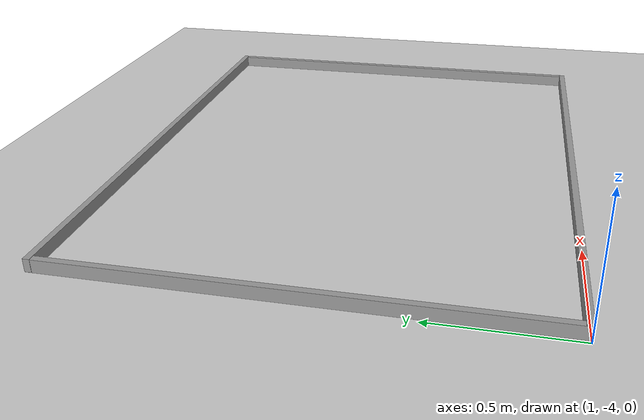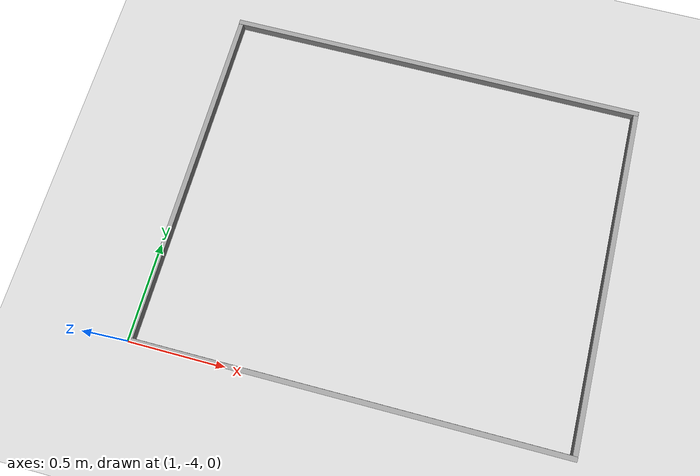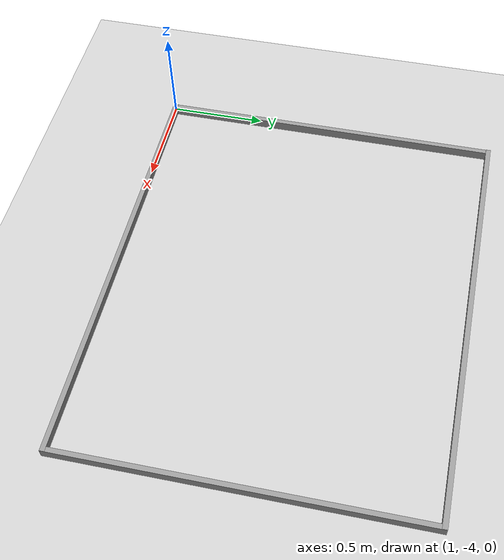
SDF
<sdf version="1.6">
 <world name="default">
  <light name="sun" type="directional">
   <pose>0 0 10 0 -0 0</pose>
   <diffuse>0.8 0.8 0.8 1</diffuse>
   <specular>0.1 0.1 0.1 1</specular>
   <attenuation>
    <range>1000</range>
    <constant>0.9</constant>
    <linear>0.01</linear>
    <quadratic>0.001</quadratic>
   </attenuation>
   <direction>-0.5 0.5 -1</direction>
  </light>
  <model name="ground_plane">
   <static>1</static>
   <link name="link">
    <collision name="collision">
     <geometry><plane><normal>0 0 1</normal><size>100 100</size></plane></geometry>
     <surface><friction><ode><mu>100</mu><mu2>50</mu2></ode></friction></surface>
    </collision>
    <visual name="visual">
     <cast_shadows>0</cast_shadows>
     <geometry><plane><normal>0 0 1</normal><size>100 100</size></plane></geometry>
     <material>
      <script><uri>file://media/materials/scripts/gazebo.material</uri><name>Gazebo/Grey</name></script>
     </material>
    </visual>
   </link>
  </model>
  <gravity>0 0 -9.8</gravity>
  <magnetic_field>6e-06 2.3e-05 -4.2e-05</magnetic_field>
  <atmosphere type="adiabatic"/>
  <physics name="default_physics" default="0" type="ode">
   <max_step_size>0.001</max_step_size>
   <real_time_factor>1</real_time_factor>
   <real_time_update_rate>1000</real_time_update_rate>
  </physics>
  <scene><ambient>0.4 0.4 0.4 1</ambient><background>0.7 0.7 0.7 1</background><shadows>1</shadows></scene>
  <spherical_coordinates>
   <surface_model>EARTH_WGS84</surface_model>
   <latitude_deg>0</latitude_deg>
   <longitude_deg>0</longitude_deg>
   <elevation>0</elevation>
   <heading_deg>0</heading_deg>
  </spherical_coordinates>
  <model name="Wall_1">
   <link name="link_3">
    <inertial>
     <mass>0.208784</mass>
     <inertia>
      <ixx>0.0347974</ixx>
      <ixy>0</ixy>
      <ixz>0</ixz>
      <iyy>0.0181571</iyy>
      <iyz>0</iyz>
      <izz>0.0181571</izz>
     </inertia>
    </inertial>
    <visual name="visual">
     <geometry><box><size>0.025 1.8 0.05</size></box></geometry>
     <material>
      <lighting>1</lighting>
      <script><uri>file://media/materials/scripts/gazebo.material</uri><name>Gazebo/Grey</name></script>
      <ambient>0.3 0.3 0.3 1</ambient>
      <diffuse>0.7 0.7 0.7 1</diffuse>
      <specular>0.01 0.01 0.01 1</specular>
      <emissive>0 0 0 1</emissive>
      <shader type="vertex"><normal_map>__default__</normal_map></shader>
     </material>
    </visual>
    <collision name="collision">
     <geometry><box><size>0.208783 1 1</size></box></geometry>
     <surface>
      <friction>
       <ode><mu>1</mu><mu2>1</mu2><fdir1>0 0 0</fdir1><slip1>0</slip1><slip2>0</slip2></ode>
       <torsional>
        <coefficient>1</coefficient>
        <patch_radius>0</patch_radius>
        <surface_radius>0</surface_radius>
        <use_patch_radius>1</use_patch_radius>
        <ode><slip>0</slip></ode>
       </torsional>
      </friction>
      <bounce><restitution_coefficient>0</restitution_coefficient><threshold>1e+06</threshold></bounce>
      <contact>
       <collide_without_contact>0</collide_without_contact>
       <collide_without_contact_bitmask>1</collide_without_contact_bitmask>
       <collide_bitmask>1</collide_bitmask>
       <ode>
        <soft_cfm>0</soft_cfm>
        <soft_erp>0.2</soft_erp>
        <kp>1e+13</kp>
        <kd>1</kd>
        <max_vel>0.01</max_vel>
        <min_depth>0</min_depth>
       </ode>
       <bullet>
        <split_impulse>1</split_impulse>
        <split_impulse_penetration_threshold>-0.01</split_impulse_penetration_threshold>
        <soft_cfm>0</soft_cfm>
        <soft_erp>0.2</soft_erp>
        <kp>1e+13</kp>
        <kd>1</kd>
       </bullet>
      </contact>
     </surface>
    </collision>
   </link>
   <static>0</static>
   <pose>1.02464 -3.10394 0.024146 0 -0 0</pose>
  </model>
  <model name="Wall_2">
   <link name="link_6">
    <inertial>
     <mass>0.540966</mass>
     <inertia>
      <ixx>0.0901612</ixx>
      <ixy>0</ixy>
      <ixz>0</ixz>
      <iyy>0.0582732</iyy>
      <iyz>0</iyz>
      <izz>0.0582732</izz>
     </inertia>
    </inertial>
    <visual name="visual">
     <geometry><box><size>2.2 0.025 0.05</size></box></geometry>
     <material>
      <lighting>1</lighting>
      <script><uri>file://media/materials/scripts/gazebo.material</uri><name>Gazebo/Grey</name></script>
      <ambient>0.3 0.3 0.3 1</ambient>
      <diffuse>0.7 0.7 0.7 1</diffuse>
      <specular>0.01 0.01 0.01 1</specular>
      <emissive>0 0 0 1</emissive>
      <shader type="vertex"><normal_map>__default__</normal_map></shader>
     </material>
    </visual>
    <collision name="collision">
     <geometry><box><size>0.540966 1 1</size></box></geometry>
     <surface>
      <friction>
       <ode><mu>1</mu><mu2>1</mu2><fdir1>0 0 0</fdir1><slip1>0</slip1><slip2>0</slip2></ode>
       <torsional>
        <coefficient>1</coefficient>
        <patch_radius>0</patch_radius>
        <surface_radius>0</surface_radius>
        <use_patch_radius>1</use_patch_radius>
        <ode><slip>0</slip></ode>
       </torsional>
      </friction>
      <bounce><restitution_coefficient>0</restitution_coefficient><threshold>1e+06</threshold></bounce>
      <contact>
       <collide_without_contact>0</collide_without_contact>
       <collide_without_contact_bitmask>1</collide_without_contact_bitmask>
       <collide_bitmask>1</collide_bitmask>
       <ode>
        <soft_cfm>0</soft_cfm>
        <soft_erp>0.2</soft_erp>
        <kp>1e+13</kp>
        <kd>1</kd>
        <max_vel>0.01</max_vel>
        <min_depth>0</min_depth>
       </ode>
       <bullet>
        <split_impulse>1</split_impulse>
        <split_impulse_penetration_threshold>-0.01</split_impulse_penetration_threshold>
        <soft_cfm>0</soft_cfm>
        <soft_erp>0.2</soft_erp>
        <kp>1e+13</kp>
        <kd>1</kd>
       </bullet>
      </contact>
     </surface>
    </collision>
   </link>
   <static>0</static>
   <pose>2.11264 -3.99198 0.025703 0 -0 0</pose>
  </model>
  <model name="Wall_3">
   <link name="link_3">
    <inertial>
     <mass>0.208784</mass>
     <inertia>
      <ixx>0.0347974</ixx>
      <ixy>0</ixy>
      <ixz>0</ixz>
      <iyy>0.0181571</iyy>
      <iyz>0</iyz>
      <izz>0.0181571</izz>
     </inertia>
    </inertial>
    <visual name="visual">
     <geometry><box><size>0.025 1.8 0.05</size></box></geometry>
     <material>
      <lighting>1</lighting>
      <script><uri>file://media/materials/scripts/gazebo.material</uri><name>Gazebo/Grey</name></script>
      <ambient>0.3 0.3 0.3 1</ambient>
      <diffuse>0.7 0.7 0.7 1</diffuse>
      <specular>0.01 0.01 0.01 1</specular>
      <emissive>0 0 0 1</emissive>
      <shader type="vertex"><normal_map>__default__</normal_map></shader>
     </material>
    </visual>
    <collision name="collision">
     <geometry><box><size>0.208783 1 1</size></box></geometry>
     <surface>
      <friction>
       <ode><mu>1</mu><mu2>1</mu2><fdir1>0 0 0</fdir1><slip1>0</slip1><slip2>0</slip2></ode>
       <torsional>
        <coefficient>1</coefficient>
        <patch_radius>0</patch_radius>
        <surface_radius>0</surface_radius>
        <use_patch_radius>1</use_patch_radius>
        <ode><slip>0</slip></ode>
       </torsional>
      </friction>
      <bounce><restitution_coefficient>0</restitution_coefficient><threshold>1e+06</threshold></bounce>
      <contact>
       <collide_without_contact>0</collide_without_contact>
       <collide_without_contact_bitmask>1</collide_without_contact_bitmask>
       <collide_bitmask>1</collide_bitmask>
       <ode>
        <soft_cfm>0</soft_cfm>
        <soft_erp>0.2</soft_erp>
        <kp>1e+13</kp>
        <kd>1</kd>
        <max_vel>0.01</max_vel>
        <min_depth>0</min_depth>
       </ode>
       <bullet>
        <split_impulse>1</split_impulse>
        <split_impulse_penetration_threshold>-0.01</split_impulse_penetration_threshold>
        <soft_cfm>0</soft_cfm>
        <soft_erp>0.2</soft_erp>
        <kp>1e+13</kp>
        <kd>1</kd>
       </bullet>
      </contact>
     </surface>
    </collision>
   </link>
   <static>0</static>
   <pose>3.20056 -3.104 0.025172 0 -0 0</pose>
  </model>
  <model name="Wall_4">
   <link name="link_6">
    <inertial>
     <mass>0.540966</mass>
     <inertia>
      <ixx>0.0901612</ixx>
      <ixy>0</ixy>
      <ixz>0</ixz>
      <iyy>0.0582732</iyy>
      <iyz>0</iyz>
      <izz>0.0582732</izz>
     </inertia>
    </inertial>
    <visual name="visual">
     <geometry><box><size>2.2 0.025 0.05</size></box></geometry>
     <material>
      <lighting>1</lighting>
      <script><uri>file://media/materials/scripts/gazebo.material</uri><name>Gazebo/Grey</name></script>
      <ambient>0.3 0.3 0.3 1</ambient>
      <diffuse>0.7 0.7 0.7 1</diffuse>
      <specular>0.01 0.01 0.01 1</specular>
      <emissive>0 0 0 1</emissive>
      <shader type="vertex"><normal_map>__default__</normal_map></shader>
     </material>
    </visual>
    <collision name="collision">
     <geometry><box><size>0.540966 1 1</size></box></geometry>
     <surface>
      <friction>
       <ode><mu>1</mu><mu2>1</mu2><fdir1>0 0 0</fdir1><slip1>0</slip1><slip2>0</slip2></ode>
       <torsional>
        <coefficient>1</coefficient>
        <patch_radius>0</patch_radius>
        <surface_radius>0</surface_radius>
        <use_patch_radius>1</use_patch_radius>
        <ode><slip>0</slip></ode>
       </torsional>
      </friction>
      <bounce><restitution_coefficient>0</restitution_coefficient><threshold>1e+06</threshold></bounce>
      <contact>
       <collide_without_contact>0</collide_without_contact>
       <collide_without_contact_bitmask>1</collide_without_contact_bitmask>
       <collide_bitmask>1</collide_bitmask>
       <ode>
        <soft_cfm>0</soft_cfm>
        <soft_erp>0.2</soft_erp>
        <kp>1e+13</kp>
        <kd>1</kd>
        <max_vel>0.01</max_vel>
        <min_depth>0</min_depth>
       </ode>
       <bullet>
        <split_impulse>1</split_impulse>
        <split_impulse_penetration_threshold>-0.01</split_impulse_penetration_threshold>
        <soft_cfm>0</soft_cfm>
        <soft_erp>0.2</soft_erp>
        <kp>1e+13</kp>
        <kd>1</kd>
       </bullet>
      </contact>
     </surface>
    </collision>
   </link>
   <static>0</static>
   <pose>2.1111 -2.21591 0.025703 0 -0 0</pose>
  </model>
 </world>
</sdf>
